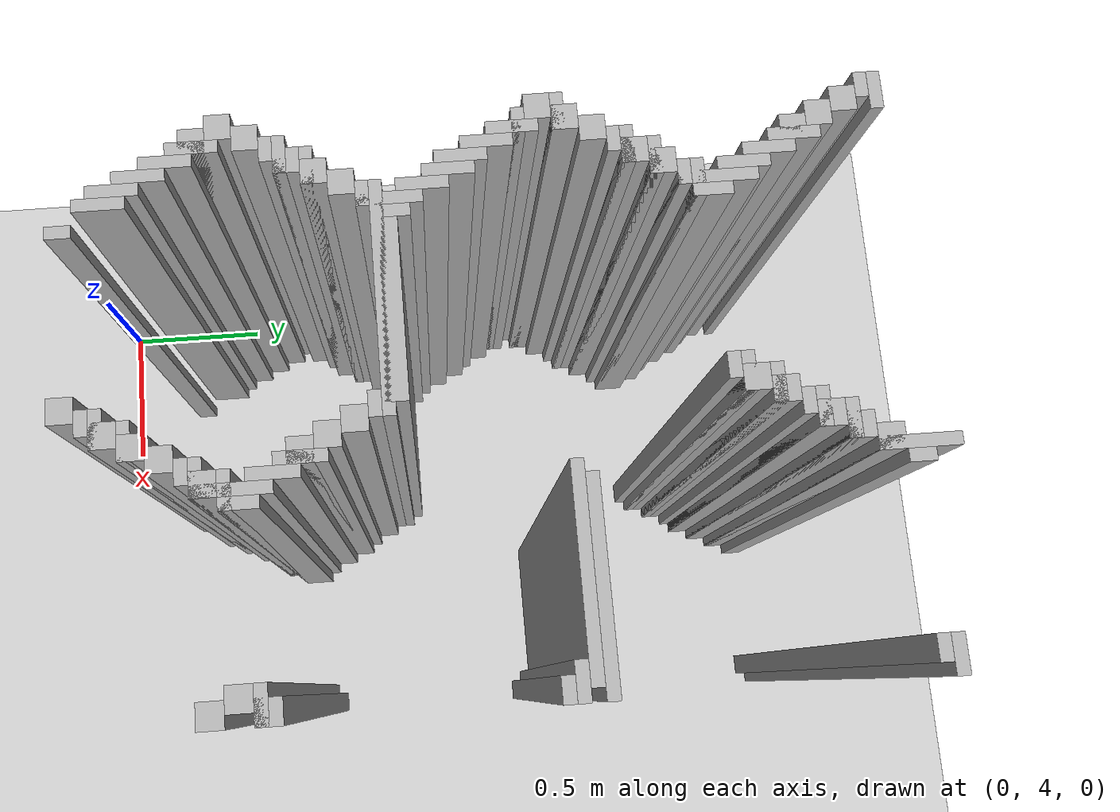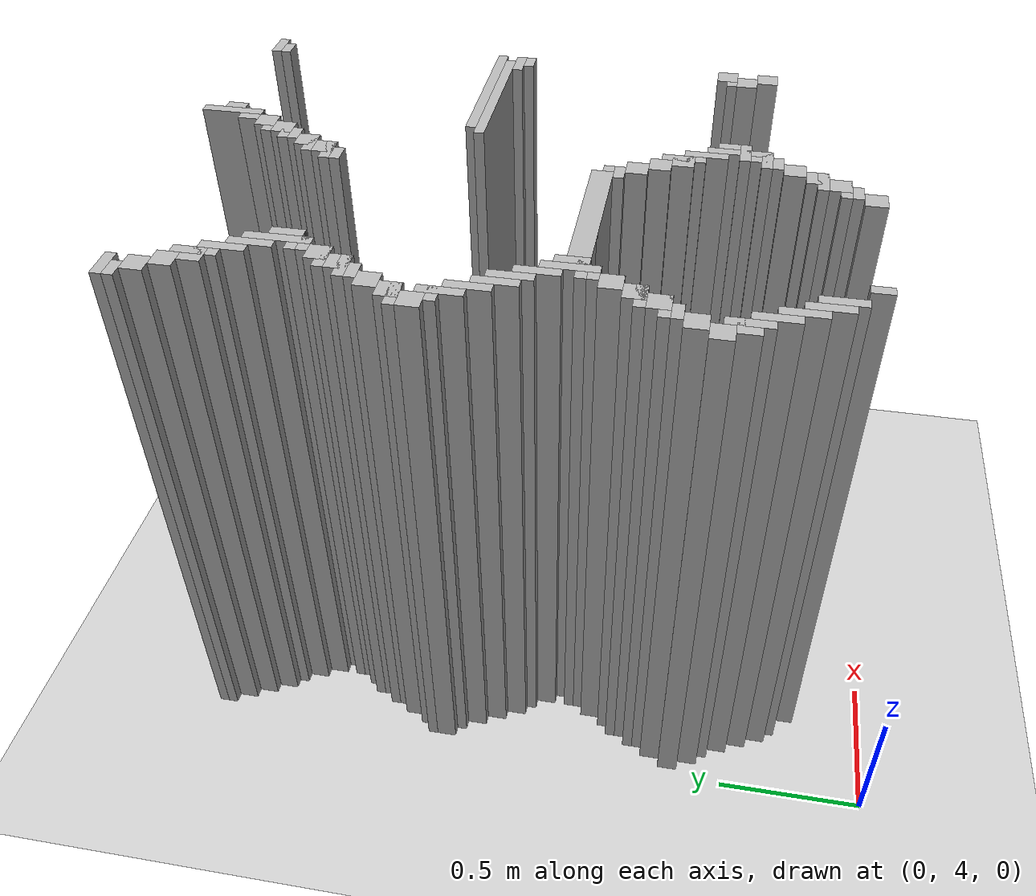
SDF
<sdf version="1.6">
 <world name="slam_world">
  <model name="ground_plane">
   <static>true</static>
   <link name="link">
    <collision name="collision">
     <geometry><plane><normal>0 0 1</normal><size>100 100</size></plane></geometry>
    </collision>
    <visual name="visual">
     <geometry><plane><normal>0 0 1</normal><size>100 100</size></plane></geometry>
     <material>
      <ambient>0.8 0.8 0.8 1</ambient>
      <diffuse>0.8 0.8 0.8 1</diffuse>
      <specular>0.8 0.8 0.8 1</specular>
     </material>
    </visual>
   </link>
  </model>
  <model name="wall_3567">
   <static>true</static>
   <pose>1.0266821345707655 6.403712296983758 1.0 0 0 0</pose>
   <link name="link">
    <collision name="collision">
     <geometry><box><size>0.03480278422273782 0.2088167053364269 2.0</size></box></geometry>
    </collision>
    <visual name="visual">
     <geometry><box><size>0.03480278422273782 0.2088167053364269 2.0</size></box></geometry>
     <material><ambient>0.5 0.5 0.5 1</ambient><diffuse>0.7 0.7 0.7 1</diffuse></material>
    </visual>
   </link>
  </model>
  <model name="wall_3596">
   <static>true</static>
   <pose>0.08700696055684454 6.421113689095128 1.0 0 0 0</pose>
   <link name="link">
    <collision name="collision">
     <geometry><box><size>0.10440835266821345 0.03480278422273782 2.0</size></box></geometry>
    </collision>
    <visual name="visual">
     <geometry><box><size>0.10440835266821345 0.03480278422273782 2.0</size></box></geometry>
     <material><ambient>0.5 0.5 0.5 1</ambient><diffuse>0.7 0.7 0.7 1</diffuse></material>
    </visual>
   </link>
  </model>
  <model name="wall_3597">
   <static>true</static>
   <pose>1.0614849187935034 6.403712296983758 1.0 0 0 0</pose>
   <link name="link">
    <collision name="collision">
     <geometry><box><size>0.03480278422273782 0.06960556844547564 2.0</size></box></geometry>
    </collision>
    <visual name="visual">
     <geometry><box><size>0.03480278422273782 0.06960556844547564 2.0</size></box></geometry>
     <material><ambient>0.5 0.5 0.5 1</ambient><diffuse>0.7 0.7 0.7 1</diffuse></material>
    </visual>
   </link>
  </model>
  <model name="wall_3598">
   <static>true</static>
   <pose>1.548723897911833 6.421113689095128 1.0 0 0 0</pose>
   <link name="link">
    <collision name="collision">
     <geometry><box><size>0.10440835266821345 0.03480278422273782 2.0</size></box></geometry>
    </collision>
    <visual name="visual">
     <geometry><box><size>0.10440835266821345 0.03480278422273782 2.0</size></box></geometry>
     <material><ambient>0.5 0.5 0.5 1</ambient><diffuse>0.7 0.7 0.7 1</diffuse></material>
    </visual>
   </link>
  </model>
  <model name="wall_3610">
   <static>true</static>
   <pose>0.06960556844547564 6.386310904872389 1.0 0 0 0</pose>
   <link name="link">
    <collision name="collision">
     <geometry><box><size>0.06960556844547564 0.03480278422273782 2.0</size></box></geometry>
    </collision>
    <visual name="visual">
     <geometry><box><size>0.06960556844547564 0.03480278422273782 2.0</size></box></geometry>
     <material><ambient>0.5 0.5 0.5 1</ambient><diffuse>0.7 0.7 0.7 1</diffuse></material>
    </visual>
   </link>
  </model>
  <model name="wall_3611">
   <static>true</static>
   <pose>1.531322505800464 6.386310904872389 1.0 0 0 0</pose>
   <link name="link">
    <collision name="collision">
     <geometry><box><size>0.06960556844547564 0.03480278422273782 2.0</size></box></geometry>
    </collision>
    <visual name="visual">
     <geometry><box><size>0.06960556844547564 0.03480278422273782 2.0</size></box></geometry>
     <material><ambient>0.5 0.5 0.5 1</ambient><diffuse>0.7 0.7 0.7 1</diffuse></material>
    </visual>
   </link>
  </model>
  <model name="wall_3620">
   <static>true</static>
   <pose>0.10440835266821345 6.334106728538282 1.0 0 0 0</pose>
   <link name="link">
    <collision name="collision">
     <geometry><box><size>0.06960556844547564 0.06960556844547564 2.0</size></box></geometry>
    </collision>
    <visual name="visual">
     <geometry><box><size>0.06960556844547564 0.06960556844547564 2.0</size></box></geometry>
     <material><ambient>0.5 0.5 0.5 1</ambient><diffuse>0.7 0.7 0.7 1</diffuse></material>
    </visual>
   </link>
  </model>
  <model name="wall_3621">
   <static>true</static>
   <pose>1.0092807424593968 6.334106728538282 1.0 0 0 0</pose>
   <link name="link">
    <collision name="collision">
     <geometry><box><size>0.06960556844547564 0.06960556844547564 2.0</size></box></geometry>
    </collision>
    <visual name="visual">
     <geometry><box><size>0.06960556844547564 0.06960556844547564 2.0</size></box></geometry>
     <material><ambient>0.5 0.5 0.5 1</ambient><diffuse>0.7 0.7 0.7 1</diffuse></material>
    </visual>
   </link>
  </model>
  <model name="wall_3642">
   <static>true</static>
   <pose>0.13921113689095127 6.2645011600928076 1.0 0 0 0</pose>
   <link name="link">
    <collision name="collision">
     <geometry><box><size>0.06960556844547564 0.06960556844547564 2.0</size></box></geometry>
    </collision>
    <visual name="visual">
     <geometry><box><size>0.06960556844547564 0.06960556844547564 2.0</size></box></geometry>
     <material><ambient>0.5 0.5 0.5 1</ambient><diffuse>0.7 0.7 0.7 1</diffuse></material>
    </visual>
   </link>
  </model>
  <model name="wall_3643">
   <static>true</static>
   <pose>0.974477958236659 6.2645011600928076 1.0 0 0 0</pose>
   <link name="link">
    <collision name="collision">
     <geometry><box><size>0.06960556844547564 0.06960556844547564 2.0</size></box></geometry>
    </collision>
    <visual name="visual">
     <geometry><box><size>0.06960556844547564 0.06960556844547564 2.0</size></box></geometry>
     <material><ambient>0.5 0.5 0.5 1</ambient><diffuse>0.7 0.7 0.7 1</diffuse></material>
    </visual>
   </link>
  </model>
  <model name="wall_3655">
   <static>true</static>
   <pose>0.191415313225058 6.194895591647332 1.0 0 0 0</pose>
   <link name="link">
    <collision name="collision">
     <geometry><box><size>0.03480278422273782 0.13921113689095127 2.0</size></box></geometry>
    </collision>
    <visual name="visual">
     <geometry><box><size>0.03480278422273782 0.13921113689095127 2.0</size></box></geometry>
     <material><ambient>0.5 0.5 0.5 1</ambient><diffuse>0.7 0.7 0.7 1</diffuse></material>
    </visual>
   </link>
  </model>
  <model name="wall_3656">
   <static>true</static>
   <pose>0.95707656612529 6.247099767981438 1.0 0 0 0</pose>
   <link name="link">
    <collision name="collision">
     <geometry><box><size>0.10440835266821345 0.03480278422273782 2.0</size></box></geometry>
    </collision>
    <visual name="visual">
     <geometry><box><size>0.10440835266821345 0.03480278422273782 2.0</size></box></geometry>
     <material><ambient>0.5 0.5 0.5 1</ambient><diffuse>0.7 0.7 0.7 1</diffuse></material>
    </visual>
   </link>
  </model>
  <model name="wall_3668">
   <static>true</static>
   <pose>0.17401392111368907 6.194895591647332 1.0 0 0 0</pose>
   <link name="link">
    <collision name="collision">
     <geometry><box><size>0.06960556844547564 0.06960556844547564 2.0</size></box></geometry>
    </collision>
    <visual name="visual">
     <geometry><box><size>0.06960556844547564 0.06960556844547564 2.0</size></box></geometry>
     <material><ambient>0.5 0.5 0.5 1</ambient><diffuse>0.7 0.7 0.7 1</diffuse></material>
    </visual>
   </link>
  </model>
  <model name="wall_3669">
   <static>true</static>
   <pose>0.9396751740139211 6.194895591647332 1.0 0 0 0</pose>
   <link name="link">
    <collision name="collision">
     <geometry><box><size>0.06960556844547564 0.06960556844547564 2.0</size></box></geometry>
    </collision>
    <visual name="visual">
     <geometry><box><size>0.06960556844547564 0.06960556844547564 2.0</size></box></geometry>
     <material><ambient>0.5 0.5 0.5 1</ambient><diffuse>0.7 0.7 0.7 1</diffuse></material>
    </visual>
   </link>
  </model>
  <model name="wall_3681">
   <static>true</static>
   <pose>0.2262180974477958 6.125290023201856 1.0 0 0 0</pose>
   <link name="link">
    <collision name="collision">
     <geometry><box><size>0.03480278422273782 0.13921113689095127 2.0</size></box></geometry>
    </collision>
    <visual name="visual">
     <geometry><box><size>0.03480278422273782 0.13921113689095127 2.0</size></box></geometry>
     <material><ambient>0.5 0.5 0.5 1</ambient><diffuse>0.7 0.7 0.7 1</diffuse></material>
    </visual>
   </link>
  </model>
  <model name="wall_3682">
   <static>true</static>
   <pose>0.9222737819025522 6.177494199535962 1.0 0 0 0</pose>
   <link name="link">
    <collision name="collision">
     <geometry><box><size>0.10440835266821345 0.03480278422273782 2.0</size></box></geometry>
    </collision>
    <visual name="visual">
     <geometry><box><size>0.10440835266821345 0.03480278422273782 2.0</size></box></geometry>
     <material><ambient>0.5 0.5 0.5 1</ambient><diffuse>0.7 0.7 0.7 1</diffuse></material>
    </visual>
   </link>
  </model>
  <model name="wall_3694">
   <static>true</static>
   <pose>0.9048723897911832 6.142691415313225 1.0 0 0 0</pose>
   <link name="link">
    <collision name="collision">
     <geometry><box><size>0.06960556844547564 0.03480278422273782 2.0</size></box></geometry>
    </collision>
    <visual name="visual">
     <geometry><box><size>0.06960556844547564 0.03480278422273782 2.0</size></box></geometry>
     <material><ambient>0.5 0.5 0.5 1</ambient><diffuse>0.7 0.7 0.7 1</diffuse></material>
    </visual>
   </link>
  </model>
  <model name="wall_3699">
   <static>true</static>
   <pose>0.2610208816705336 6.05568445475638 1.0 0 0 0</pose>
   <link name="link">
    <collision name="collision">
     <geometry><box><size>0.03480278422273782 0.13921113689095127 2.0</size></box></geometry>
    </collision>
    <visual name="visual">
     <geometry><box><size>0.03480278422273782 0.13921113689095127 2.0</size></box></geometry>
     <material><ambient>0.5 0.5 0.5 1</ambient><diffuse>0.7 0.7 0.7 1</diffuse></material>
    </visual>
   </link>
  </model>
  <model name="wall_3700">
   <static>true</static>
   <pose>0.8700696055684455 6.090487238979118 1.0 0 0 0</pose>
   <link name="link">
    <collision name="collision">
     <geometry><box><size>0.06960556844547564 0.06960556844547564 2.0</size></box></geometry>
    </collision>
    <visual name="visual">
     <geometry><box><size>0.06960556844547564 0.06960556844547564 2.0</size></box></geometry>
     <material><ambient>0.5 0.5 0.5 1</ambient><diffuse>0.7 0.7 0.7 1</diffuse></material>
    </visual>
   </link>
  </model>
  <model name="wall_3712">
   <static>true</static>
   <pose>0.29582366589327147 5.986078886310905 1.0 0 0 0</pose>
   <link name="link">
    <collision name="collision">
     <geometry><box><size>0.03480278422273782 0.2088167053364269 2.0</size></box></geometry>
    </collision>
    <visual name="visual">
     <geometry><box><size>0.03480278422273782 0.2088167053364269 2.0</size></box></geometry>
     <material><ambient>0.5 0.5 0.5 1</ambient><diffuse>0.7 0.7 0.7 1</diffuse></material>
    </visual>
   </link>
  </model>
  <model name="wall_3713">
   <static>true</static>
   <pose>0.8526682134570766 6.073085846867749 1.0 0 0 0</pose>
   <link name="link">
    <collision name="collision">
     <geometry><box><size>0.10440835266821345 0.03480278422273782 2.0</size></box></geometry>
    </collision>
    <visual name="visual">
     <geometry><box><size>0.10440835266821345 0.03480278422273782 2.0</size></box></geometry>
     <material><ambient>0.5 0.5 0.5 1</ambient><diffuse>0.7 0.7 0.7 1</diffuse></material>
    </visual>
   </link>
  </model>
  <model name="wall_3725">
   <static>true</static>
   <pose>0.8352668213457076 6.020881670533642 1.0 0 0 0</pose>
   <link name="link">
    <collision name="collision">
     <geometry><box><size>0.06960556844547564 0.06960556844547564 2.0</size></box></geometry>
    </collision>
    <visual name="visual">
     <geometry><box><size>0.06960556844547564 0.06960556844547564 2.0</size></box></geometry>
     <material><ambient>0.5 0.5 0.5 1</ambient><diffuse>0.7 0.7 0.7 1</diffuse></material>
    </visual>
   </link>
  </model>
  <model name="wall_3730">
   <static>true</static>
   <pose>0.3306264501160093 5.968677494199536 1.0 0 0 0</pose>
   <link name="link">
    <collision name="collision">
     <geometry><box><size>0.03480278422273782 0.10440835266821345 2.0</size></box></geometry>
    </collision>
    <visual name="visual">
     <geometry><box><size>0.03480278422273782 0.10440835266821345 2.0</size></box></geometry>
     <material><ambient>0.5 0.5 0.5 1</ambient><diffuse>0.7 0.7 0.7 1</diffuse></material>
    </visual>
   </link>
  </model>
  <model name="wall_3731">
   <static>true</static>
   <pose>0.8178654292343387 6.003480278422273 1.0 0 0 0</pose>
   <link name="link">
    <collision name="collision">
     <geometry><box><size>0.10440835266821345 0.03480278422273782 2.0</size></box></geometry>
    </collision>
    <visual name="visual">
     <geometry><box><size>0.10440835266821345 0.03480278422273782 2.0</size></box></geometry>
     <material><ambient>0.5 0.5 0.5 1</ambient><diffuse>0.7 0.7 0.7 1</diffuse></material>
    </visual>
   </link>
  </model>
  <model name="wall_3742">
   <static>true</static>
   <pose>0.8004640371229698 5.968677494199536 1.0 0 0 0</pose>
   <link name="link">
    <collision name="collision">
     <geometry><box><size>0.06960556844547564 0.03480278422273782 2.0</size></box></geometry>
    </collision>
    <visual name="visual">
     <geometry><box><size>0.06960556844547564 0.03480278422273782 2.0</size></box></geometry>
     <material><ambient>0.5 0.5 0.5 1</ambient><diffuse>0.7 0.7 0.7 1</diffuse></material>
    </visual>
   </link>
  </model>
  <model name="wall_3752">
   <static>true</static>
   <pose>0.29582366589327147 5.933874709976798 1.0 0 0 0</pose>
   <link name="link">
    <collision name="collision">
     <geometry><box><size>0.10440835266821345 0.03480278422273782 2.0</size></box></geometry>
    </collision>
    <visual name="visual">
     <geometry><box><size>0.10440835266821345 0.03480278422273782 2.0</size></box></geometry>
     <material><ambient>0.5 0.5 0.5 1</ambient><diffuse>0.7 0.7 0.7 1</diffuse></material>
    </visual>
   </link>
  </model>
  <model name="wall_3765">
   <static>true</static>
   <pose>0.27842227378190254 5.89907192575406 1.0 0 0 0</pose>
   <link name="link">
    <collision name="collision">
     <geometry><box><size>0.06960556844547564 0.03480278422273782 2.0</size></box></geometry>
    </collision>
    <visual name="visual">
     <geometry><box><size>0.06960556844547564 0.03480278422273782 2.0</size></box></geometry>
     <material><ambient>0.5 0.5 0.5 1</ambient><diffuse>0.7 0.7 0.7 1</diffuse></material>
    </visual>
   </link>
  </model>
  <model name="wall_3771">
   <static>true</static>
   <pose>0.24361948955916474 5.846867749419953 1.0 0 0 0</pose>
   <link name="link">
    <collision name="collision">
     <geometry><box><size>0.06960556844547564 0.06960556844547564 2.0</size></box></geometry>
    </collision>
    <visual name="visual">
     <geometry><box><size>0.06960556844547564 0.06960556844547564 2.0</size></box></geometry>
     <material><ambient>0.5 0.5 0.5 1</ambient><diffuse>0.7 0.7 0.7 1</diffuse></material>
    </visual>
   </link>
  </model>
  <model name="wall_3784">
   <static>true</static>
   <pose>0.2262180974477958 5.8294663573085845 1.0 0 0 0</pose>
   <link name="link">
    <collision name="collision">
     <geometry><box><size>0.10440835266821345 0.03480278422273782 2.0</size></box></geometry>
    </collision>
    <visual name="visual">
     <geometry><box><size>0.10440835266821345 0.03480278422273782 2.0</size></box></geometry>
     <material><ambient>0.5 0.5 0.5 1</ambient><diffuse>0.7 0.7 0.7 1</diffuse></material>
    </visual>
   </link>
  </model>
  <model name="wall_3797">
   <static>true</static>
   <pose>0.2088167053364269 5.7772621809744775 1.0 0 0 0</pose>
   <link name="link">
    <collision name="collision">
     <geometry><box><size>0.06960556844547564 0.06960556844547564 2.0</size></box></geometry>
    </collision>
    <visual name="visual">
     <geometry><box><size>0.06960556844547564 0.06960556844547564 2.0</size></box></geometry>
     <material><ambient>0.5 0.5 0.5 1</ambient><diffuse>0.7 0.7 0.7 1</diffuse></material>
    </visual>
   </link>
  </model>
  <model name="wall_3809">
   <static>true</static>
   <pose>0.191415313225058 5.759860788863109 1.0 0 0 0</pose>
   <link name="link">
    <collision name="collision">
     <geometry><box><size>0.10440835266821345 0.03480278422273782 2.0</size></box></geometry>
    </collision>
    <visual name="visual">
     <geometry><box><size>0.10440835266821345 0.03480278422273782 2.0</size></box></geometry>
     <material><ambient>0.5 0.5 0.5 1</ambient><diffuse>0.7 0.7 0.7 1</diffuse></material>
    </visual>
   </link>
  </model>
  <model name="wall_3822">
   <static>true</static>
   <pose>0.17401392111368907 5.725058004640371 1.0 0 0 0</pose>
   <link name="link">
    <collision name="collision">
     <geometry><box><size>0.06960556844547564 0.03480278422273782 2.0</size></box></geometry>
    </collision>
    <visual name="visual">
     <geometry><box><size>0.06960556844547564 0.03480278422273782 2.0</size></box></geometry>
     <material><ambient>0.5 0.5 0.5 1</ambient><diffuse>0.7 0.7 0.7 1</diffuse></material>
    </visual>
   </link>
  </model>
  <model name="wall_3828">
   <static>true</static>
   <pose>0.13921113689095127 5.672853828306264 1.0 0 0 0</pose>
   <link name="link">
    <collision name="collision">
     <geometry><box><size>0.06960556844547564 0.06960556844547564 2.0</size></box></geometry>
    </collision>
    <visual name="visual">
     <geometry><box><size>0.06960556844547564 0.06960556844547564 2.0</size></box></geometry>
     <material><ambient>0.5 0.5 0.5 1</ambient><diffuse>0.7 0.7 0.7 1</diffuse></material>
    </visual>
   </link>
  </model>
  <model name="wall_3841">
   <static>true</static>
   <pose>0.10440835266821345 5.603248259860789 1.0 0 0 0</pose>
   <link name="link">
    <collision name="collision">
     <geometry><box><size>0.06960556844547564 0.06960556844547564 2.0</size></box></geometry>
    </collision>
    <visual name="visual">
     <geometry><box><size>0.06960556844547564 0.06960556844547564 2.0</size></box></geometry>
     <material><ambient>0.5 0.5 0.5 1</ambient><diffuse>0.7 0.7 0.7 1</diffuse></material>
    </visual>
   </link>
  </model>
  <model name="wall_3854">
   <static>true</static>
   <pose>0.08700696055684454 5.58584686774942 1.0 0 0 0</pose>
   <link name="link">
    <collision name="collision">
     <geometry><box><size>0.10440835266821345 0.03480278422273782 2.0</size></box></geometry>
    </collision>
    <visual name="visual">
     <geometry><box><size>0.10440835266821345 0.03480278422273782 2.0</size></box></geometry>
     <material><ambient>0.5 0.5 0.5 1</ambient><diffuse>0.7 0.7 0.7 1</diffuse></material>
    </visual>
   </link>
  </model>
  <model name="wall_3855">
   <static>true</static>
   <pose>1.322505800464037 5.58584686774942 1.0 0 0 0</pose>
   <link name="link">
    <collision name="collision">
     <geometry><box><size>0.5568445475638051 0.03480278422273782 2.0</size></box></geometry>
    </collision>
    <visual name="visual">
     <geometry><box><size>0.5568445475638051 0.03480278422273782 2.0</size></box></geometry>
     <material><ambient>0.5 0.5 0.5 1</ambient><diffuse>0.7 0.7 0.7 1</diffuse></material>
    </visual>
   </link>
  </model>
  <model name="wall_3868">
   <static>true</static>
   <pose>0.06960556844547564 5.533642691415313 1.0 0 0 0</pose>
   <link name="link">
    <collision name="collision">
     <geometry><box><size>0.06960556844547564 0.06960556844547564 2.0</size></box></geometry>
    </collision>
    <visual name="visual">
     <geometry><box><size>0.06960556844547564 0.06960556844547564 2.0</size></box></geometry>
     <material><ambient>0.5 0.5 0.5 1</ambient><diffuse>0.7 0.7 0.7 1</diffuse></material>
    </visual>
   </link>
  </model>
  <model name="wall_3869">
   <static>true</static>
   <pose>1.2877030162412992 5.551044083526682 1.0 0 0 0</pose>
   <link name="link">
    <collision name="collision">
     <geometry><box><size>0.5568445475638051 0.03480278422273782 2.0</size></box></geometry>
    </collision>
    <visual name="visual">
     <geometry><box><size>0.5568445475638051 0.03480278422273782 2.0</size></box></geometry>
     <material><ambient>0.5 0.5 0.5 1</ambient><diffuse>0.7 0.7 0.7 1</diffuse></material>
    </visual>
   </link>
  </model>
  <model name="wall_3879">
   <static>true</static>
   <pose>0.12180974477958237 5.464037122969837 1.0 0 0 0</pose>
   <link name="link">
    <collision name="collision">
     <geometry><box><size>0.03480278422273782 0.13921113689095127 2.0</size></box></geometry>
    </collision>
    <visual name="visual">
     <geometry><box><size>0.03480278422273782 0.13921113689095127 2.0</size></box></geometry>
     <material><ambient>0.5 0.5 0.5 1</ambient><diffuse>0.7 0.7 0.7 1</diffuse></material>
    </visual>
   </link>
  </model>
  <model name="wall_3880">
   <static>true</static>
   <pose>1.548723897911833 5.516241299303944 1.0 0 0 0</pose>
   <link name="link">
    <collision name="collision">
     <geometry><box><size>0.10440835266821345 0.03480278422273782 2.0</size></box></geometry>
    </collision>
    <visual name="visual">
     <geometry><box><size>0.10440835266821345 0.03480278422273782 2.0</size></box></geometry>
     <material><ambient>0.5 0.5 0.5 1</ambient><diffuse>0.7 0.7 0.7 1</diffuse></material>
    </visual>
   </link>
  </model>
  <model name="wall_3894">
   <static>true</static>
   <pose>0.10440835266821345 5.481438515081206 1.0 0 0 0</pose>
   <link name="link">
    <collision name="collision">
     <geometry><box><size>0.06960556844547564 0.03480278422273782 2.0</size></box></geometry>
    </collision>
    <visual name="visual">
     <geometry><box><size>0.06960556844547564 0.03480278422273782 2.0</size></box></geometry>
     <material><ambient>0.5 0.5 0.5 1</ambient><diffuse>0.7 0.7 0.7 1</diffuse></material>
    </visual>
   </link>
  </model>
  <model name="wall_3895">
   <static>true</static>
   <pose>1.5661252900232019 5.481438515081206 1.0 0 0 0</pose>
   <link name="link">
    <collision name="collision">
     <geometry><box><size>0.06960556844547564 0.03480278422273782 2.0</size></box></geometry>
    </collision>
    <visual name="visual">
     <geometry><box><size>0.06960556844547564 0.03480278422273782 2.0</size></box></geometry>
     <material><ambient>0.5 0.5 0.5 1</ambient><diffuse>0.7 0.7 0.7 1</diffuse></material>
    </visual>
   </link>
  </model>
  <model name="wall_3907">
   <static>true</static>
   <pose>0.15661252900232017 5.3944315545243615 1.0 0 0 0</pose>
   <link name="link">
    <collision name="collision">
     <geometry><box><size>0.03480278422273782 0.13921113689095127 2.0</size></box></geometry>
    </collision>
    <visual name="visual">
     <geometry><box><size>0.03480278422273782 0.13921113689095127 2.0</size></box></geometry>
     <material><ambient>0.5 0.5 0.5 1</ambient><diffuse>0.7 0.7 0.7 1</diffuse></material>
    </visual>
   </link>
  </model>
  <model name="wall_3920">
   <static>true</static>
   <pose>0.191415313225058 5.324825986078886 1.0 0 0 0</pose>
   <link name="link">
    <collision name="collision">
     <geometry><box><size>0.03480278422273782 0.13921113689095127 2.0</size></box></geometry>
    </collision>
    <visual name="visual">
     <geometry><box><size>0.03480278422273782 0.13921113689095127 2.0</size></box></geometry>
     <material><ambient>0.5 0.5 0.5 1</ambient><diffuse>0.7 0.7 0.7 1</diffuse></material>
    </visual>
   </link>
  </model>
  <model name="wall_3933">
   <static>true</static>
   <pose>0.2262180974477958 5.290023201856148 1.0 0 0 0</pose>
   <link name="link">
    <collision name="collision">
     <geometry><box><size>0.03480278422273782 0.13921113689095127 2.0</size></box></geometry>
    </collision>
    <visual name="visual">
     <geometry><box><size>0.03480278422273782 0.13921113689095127 2.0</size></box></geometry>
     <material><ambient>0.5 0.5 0.5 1</ambient><diffuse>0.7 0.7 0.7 1</diffuse></material>
    </visual>
   </link>
  </model>
  <model name="wall_3954">
   <static>true</static>
   <pose>0.2610208816705336 5.220417633410673 1.0 0 0 0</pose>
   <link name="link">
    <collision name="collision">
     <geometry><box><size>0.03480278422273782 0.13921113689095127 2.0</size></box></geometry>
    </collision>
    <visual name="visual">
     <geometry><box><size>0.03480278422273782 0.13921113689095127 2.0</size></box></geometry>
     <material><ambient>0.5 0.5 0.5 1</ambient><diffuse>0.7 0.7 0.7 1</diffuse></material>
    </visual>
   </link>
  </model>
  <model name="wall_3974">
   <static>true</static>
   <pose>0.29582366589327147 5.133410672853828 1.0 0 0 0</pose>
   <link name="link">
    <collision name="collision">
     <geometry><box><size>0.03480278422273782 0.17401392111368907 2.0</size></box></geometry>
    </collision>
    <visual name="visual">
     <geometry><box><size>0.03480278422273782 0.17401392111368907 2.0</size></box></geometry>
     <material><ambient>0.5 0.5 0.5 1</ambient><diffuse>0.7 0.7 0.7 1</diffuse></material>
    </visual>
   </link>
  </model>
  <model name="wall_3987">
   <static>true</static>
   <pose>0.3306264501160093 5.133410672853828 1.0 0 0 0</pose>
   <link name="link">
    <collision name="collision">
     <geometry><box><size>0.03480278422273782 0.10440835266821345 2.0</size></box></geometry>
    </collision>
    <visual name="visual">
     <geometry><box><size>0.03480278422273782 0.10440835266821345 2.0</size></box></geometry>
     <material><ambient>0.5 0.5 0.5 1</ambient><diffuse>0.7 0.7 0.7 1</diffuse></material>
    </visual>
   </link>
  </model>
  <model name="wall_4000">
   <static>true</static>
   <pose>0.5916473317865429 5.1160092807424595 1.0 0 0 0</pose>
   <link name="link">
    <collision name="collision">
     <geometry><box><size>0.4872389791183295 0.06960556844547564 2.0</size></box></geometry>
    </collision>
    <visual name="visual">
     <geometry><box><size>0.4872389791183295 0.06960556844547564 2.0</size></box></geometry>
     <material><ambient>0.5 0.5 0.5 1</ambient><diffuse>0.7 0.7 0.7 1</diffuse></material>
    </visual>
   </link>
  </model>
  <model name="wall_4010">
   <static>true</static>
   <pose>0.5568445475638051 5.09860788863109 1.0 0 0 0</pose>
   <link name="link">
    <collision name="collision">
     <geometry><box><size>0.6264501160092807 0.03480278422273782 2.0</size></box></geometry>
    </collision>
    <visual name="visual">
     <geometry><box><size>0.6264501160092807 0.03480278422273782 2.0</size></box></geometry>
     <material><ambient>0.5 0.5 0.5 1</ambient><diffuse>0.7 0.7 0.7 1</diffuse></material>
    </visual>
   </link>
  </model>
  <model name="wall_4022">
   <static>true</static>
   <pose>0.27842227378190254 5.0638051044083525 1.0 0 0 0</pose>
   <link name="link">
    <collision name="collision">
     <geometry><box><size>0.06960556844547564 0.03480278422273782 2.0</size></box></geometry>
    </collision>
    <visual name="visual">
     <geometry><box><size>0.06960556844547564 0.03480278422273782 2.0</size></box></geometry>
     <material><ambient>0.5 0.5 0.5 1</ambient><diffuse>0.7 0.7 0.7 1</diffuse></material>
    </visual>
   </link>
  </model>
  <model name="wall_4023">
   <static>true</static>
   <pose>0.8352668213457076 5.0638051044083525 1.0 0 0 0</pose>
   <link name="link">
    <collision name="collision">
     <geometry><box><size>0.06960556844547564 0.03480278422273782 2.0</size></box></geometry>
    </collision>
    <visual name="visual">
     <geometry><box><size>0.06960556844547564 0.03480278422273782 2.0</size></box></geometry>
     <material><ambient>0.5 0.5 0.5 1</ambient><diffuse>0.7 0.7 0.7 1</diffuse></material>
    </visual>
   </link>
  </model>
  <model name="wall_4037">
   <static>true</static>
   <pose>0.24361948955916474 5.0116009280742455 1.0 0 0 0</pose>
   <link name="link">
    <collision name="collision">
     <geometry><box><size>0.06960556844547564 0.06960556844547564 2.0</size></box></geometry>
    </collision>
    <visual name="visual">
     <geometry><box><size>0.06960556844547564 0.06960556844547564 2.0</size></box></geometry>
     <material><ambient>0.5 0.5 0.5 1</ambient><diffuse>0.7 0.7 0.7 1</diffuse></material>
    </visual>
   </link>
  </model>
  <model name="wall_4038">
   <static>true</static>
   <pose>0.8700696055684455 5.0116009280742455 1.0 0 0 0</pose>
   <link name="link">
    <collision name="collision">
     <geometry><box><size>0.06960556844547564 0.06960556844547564 2.0</size></box></geometry>
    </collision>
    <visual name="visual">
     <geometry><box><size>0.06960556844547564 0.06960556844547564 2.0</size></box></geometry>
     <material><ambient>0.5 0.5 0.5 1</ambient><diffuse>0.7 0.7 0.7 1</diffuse></material>
    </visual>
   </link>
  </model>
  <model name="wall_4052">
   <static>true</static>
   <pose>0.2088167053364269 4.94199535962877 1.0 0 0 0</pose>
   <link name="link">
    <collision name="collision">
     <geometry><box><size>0.06960556844547564 0.06960556844547564 2.0</size></box></geometry>
    </collision>
    <visual name="visual">
     <geometry><box><size>0.06960556844547564 0.06960556844547564 2.0</size></box></geometry>
     <material><ambient>0.5 0.5 0.5 1</ambient><diffuse>0.7 0.7 0.7 1</diffuse></material>
    </visual>
   </link>
  </model>
  <model name="wall_4053">
   <static>true</static>
   <pose>0.9048723897911832 4.94199535962877 1.0 0 0 0</pose>
   <link name="link">
    <collision name="collision">
     <geometry><box><size>0.06960556844547564 0.06960556844547564 2.0</size></box></geometry>
    </collision>
    <visual name="visual">
     <geometry><box><size>0.06960556844547564 0.06960556844547564 2.0</size></box></geometry>
     <material><ambient>0.5 0.5 0.5 1</ambient><diffuse>0.7 0.7 0.7 1</diffuse></material>
    </visual>
   </link>
  </model>
  <model name="wall_4067">
   <static>true</static>
   <pose>0.191415313225058 4.924593967517401 1.0 0 0 0</pose>
   <link name="link">
    <collision name="collision">
     <geometry><box><size>0.10440835266821345 0.03480278422273782 2.0</size></box></geometry>
    </collision>
    <visual name="visual">
     <geometry><box><size>0.10440835266821345 0.03480278422273782 2.0</size></box></geometry>
     <material><ambient>0.5 0.5 0.5 1</ambient><diffuse>0.7 0.7 0.7 1</diffuse></material>
    </visual>
   </link>
  </model>
  <model name="wall_4068">
   <static>true</static>
   <pose>0.95707656612529 4.872389791183294 1.0 0 0 0</pose>
   <link name="link">
    <collision name="collision">
     <geometry><box><size>0.03480278422273782 0.13921113689095127 2.0</size></box></geometry>
    </collision>
    <visual name="visual">
     <geometry><box><size>0.03480278422273782 0.13921113689095127 2.0</size></box></geometry>
     <material><ambient>0.5 0.5 0.5 1</ambient><diffuse>0.7 0.7 0.7 1</diffuse></material>
    </visual>
   </link>
  </model>
  <model name="wall_4082">
   <static>true</static>
   <pose>0.17401392111368907 4.872389791183294 1.0 0 0 0</pose>
   <link name="link">
    <collision name="collision">
     <geometry><box><size>0.06960556844547564 0.06960556844547564 2.0</size></box></geometry>
    </collision>
    <visual name="visual">
     <geometry><box><size>0.06960556844547564 0.06960556844547564 2.0</size></box></geometry>
     <material><ambient>0.5 0.5 0.5 1</ambient><diffuse>0.7 0.7 0.7 1</diffuse></material>
    </visual>
   </link>
  </model>
  <model name="wall_4083">
   <static>true</static>
   <pose>0.9396751740139211 4.872389791183294 1.0 0 0 0</pose>
   <link name="link">
    <collision name="collision">
     <geometry><box><size>0.06960556844547564 0.06960556844547564 2.0</size></box></geometry>
    </collision>
    <visual name="visual">
     <geometry><box><size>0.06960556844547564 0.06960556844547564 2.0</size></box></geometry>
     <material><ambient>0.5 0.5 0.5 1</ambient><diffuse>0.7 0.7 0.7 1</diffuse></material>
    </visual>
   </link>
  </model>
  <model name="wall_4095">
   <static>true</static>
   <pose>0.15661252900232017 4.854988399071925 1.0 0 0 0</pose>
   <link name="link">
    <collision name="collision">
     <geometry><box><size>0.10440835266821345 0.03480278422273782 2.0</size></box></geometry>
    </collision>
    <visual name="visual">
     <geometry><box><size>0.10440835266821345 0.03480278422273782 2.0</size></box></geometry>
     <material><ambient>0.5 0.5 0.5 1</ambient><diffuse>0.7 0.7 0.7 1</diffuse></material>
    </visual>
   </link>
  </model>
  <model name="wall_4096">
   <static>true</static>
   <pose>0.9918793503480278 4.802784222737819 1.0 0 0 0</pose>
   <link name="link">
    <collision name="collision">
     <geometry><box><size>0.03480278422273782 0.13921113689095127 2.0</size></box></geometry>
    </collision>
    <visual name="visual">
     <geometry><box><size>0.03480278422273782 0.13921113689095127 2.0</size></box></geometry>
     <material><ambient>0.5 0.5 0.5 1</ambient><diffuse>0.7 0.7 0.7 1</diffuse></material>
    </visual>
   </link>
  </model>
  <model name="wall_4110">
   <static>true</static>
   <pose>0.13921113689095127 4.820185614849188 1.0 0 0 0</pose>
   <link name="link">
    <collision name="collision">
     <geometry><box><size>0.06960556844547564 0.03480278422273782 2.0</size></box></geometry>
    </collision>
    <visual name="visual">
     <geometry><box><size>0.06960556844547564 0.03480278422273782 2.0</size></box></geometry>
     <material><ambient>0.5 0.5 0.5 1</ambient><diffuse>0.7 0.7 0.7 1</diffuse></material>
    </visual>
   </link>
  </model>
  <model name="wall_4118">
   <static>true</static>
   <pose>0.10440835266821345 4.767981438515081 1.0 0 0 0</pose>
   <link name="link">
    <collision name="collision">
     <geometry><box><size>0.06960556844547564 0.06960556844547564 2.0</size></box></geometry>
    </collision>
    <visual name="visual">
     <geometry><box><size>0.06960556844547564 0.06960556844547564 2.0</size></box></geometry>
     <material><ambient>0.5 0.5 0.5 1</ambient><diffuse>0.7 0.7 0.7 1</diffuse></material>
    </visual>
   </link>
  </model>
  <model name="wall_4119">
   <static>true</static>
   <pose>1.0266821345707655 4.698375870069605 1.0 0 0 0</pose>
   <link name="link">
    <collision name="collision">
     <geometry><box><size>0.03480278422273782 0.2088167053364269 2.0</size></box></geometry>
    </collision>
    <visual name="visual">
     <geometry><box><size>0.03480278422273782 0.2088167053364269 2.0</size></box></geometry>
     <material><ambient>0.5 0.5 0.5 1</ambient><diffuse>0.7 0.7 0.7 1</diffuse></material>
    </visual>
   </link>
  </model>
  <model name="wall_4120">
   <static>true</static>
   <pose>1.5661252900232019 4.767981438515081 1.0 0 0 0</pose>
   <link name="link">
    <collision name="collision">
     <geometry><box><size>0.06960556844547564 0.06960556844547564 2.0</size></box></geometry>
    </collision>
    <visual name="visual">
     <geometry><box><size>0.06960556844547564 0.06960556844547564 2.0</size></box></geometry>
     <material><ambient>0.5 0.5 0.5 1</ambient><diffuse>0.7 0.7 0.7 1</diffuse></material>
    </visual>
   </link>
  </model>
  <model name="wall_4133">
   <static>true</static>
   <pose>1.0614849187935034 4.715777262180974 1.0 0 0 0</pose>
   <link name="link">
    <collision name="collision">
     <geometry><box><size>0.03480278422273782 0.10440835266821345 2.0</size></box></geometry>
    </collision>
    <visual name="visual">
     <geometry><box><size>0.03480278422273782 0.10440835266821345 2.0</size></box></geometry>
     <material><ambient>0.5 0.5 0.5 1</ambient><diffuse>0.7 0.7 0.7 1</diffuse></material>
    </visual>
   </link>
  </model>
  <model name="wall_4134">
   <static>true</static>
   <pose>1.548723897911833 4.750580046403712 1.0 0 0 0</pose>
   <link name="link">
    <collision name="collision">
     <geometry><box><size>0.10440835266821345 0.03480278422273782 2.0</size></box></geometry>
    </collision>
    <visual name="visual">
     <geometry><box><size>0.10440835266821345 0.03480278422273782 2.0</size></box></geometry>
     <material><ambient>0.5 0.5 0.5 1</ambient><diffuse>0.7 0.7 0.7 1</diffuse></material>
    </visual>
   </link>
  </model>
  <model name="wall_4147">
   <static>true</static>
   <pose>0.06960556844547564 4.698375870069605 1.0 0 0 0</pose>
   <link name="link">
    <collision name="collision">
     <geometry><box><size>0.06960556844547564 0.06960556844547564 2.0</size></box></geometry>
    </collision>
    <visual name="visual">
     <geometry><box><size>0.06960556844547564 0.06960556844547564 2.0</size></box></geometry>
     <material><ambient>0.5 0.5 0.5 1</ambient><diffuse>0.7 0.7 0.7 1</diffuse></material>
    </visual>
   </link>
  </model>
  <model name="wall_4148">
   <static>true</static>
   <pose>1.531322505800464 4.698375870069605 1.0 0 0 0</pose>
   <link name="link">
    <collision name="collision">
     <geometry><box><size>0.06960556844547564 0.06960556844547564 2.0</size></box></geometry>
    </collision>
    <visual name="visual">
     <geometry><box><size>0.06960556844547564 0.06960556844547564 2.0</size></box></geometry>
     <material><ambient>0.5 0.5 0.5 1</ambient><diffuse>0.7 0.7 0.7 1</diffuse></material>
    </visual>
   </link>
  </model>
  <model name="wall_4159">
   <static>true</static>
   <pose>0.12180974477958237 4.6287703016241295 1.0 0 0 0</pose>
   <link name="link">
    <collision name="collision">
     <geometry><box><size>0.03480278422273782 0.13921113689095127 2.0</size></box></geometry>
    </collision>
    <visual name="visual">
     <geometry><box><size>0.03480278422273782 0.13921113689095127 2.0</size></box></geometry>
     <material><ambient>0.5 0.5 0.5 1</ambient><diffuse>0.7 0.7 0.7 1</diffuse></material>
    </visual>
   </link>
  </model>
  <model name="wall_4160">
   <static>true</static>
   <pose>1.0266821345707655 4.6809744779582365 1.0 0 0 0</pose>
   <link name="link">
    <collision name="collision">
     <geometry><box><size>0.10440835266821345 0.03480278422273782 2.0</size></box></geometry>
    </collision>
    <visual name="visual">
     <geometry><box><size>0.10440835266821345 0.03480278422273782 2.0</size></box></geometry>
     <material><ambient>0.5 0.5 0.5 1</ambient><diffuse>0.7 0.7 0.7 1</diffuse></material>
    </visual>
   </link>
  </model>
  <model name="wall_4173">
   <static>true</static>
   <pose>0.10440835266821345 4.6287703016241295 1.0 0 0 0</pose>
   <link name="link">
    <collision name="collision">
     <geometry><box><size>0.06960556844547564 0.06960556844547564 2.0</size></box></geometry>
    </collision>
    <visual name="visual">
     <geometry><box><size>0.06960556844547564 0.06960556844547564 2.0</size></box></geometry>
     <material><ambient>0.5 0.5 0.5 1</ambient><diffuse>0.7 0.7 0.7 1</diffuse></material>
    </visual>
   </link>
  </model>
  <model name="wall_4174">
   <static>true</static>
   <pose>1.0092807424593968 4.6287703016241295 1.0 0 0 0</pose>
   <link name="link">
    <collision name="collision">
     <geometry><box><size>0.06960556844547564 0.06960556844547564 2.0</size></box></geometry>
    </collision>
    <visual name="visual">
     <geometry><box><size>0.06960556844547564 0.06960556844547564 2.0</size></box></geometry>
     <material><ambient>0.5 0.5 0.5 1</ambient><diffuse>0.7 0.7 0.7 1</diffuse></material>
    </visual>
   </link>
  </model>
  <model name="wall_4175">
   <static>true</static>
   <pose>1.5661252900232019 4.6287703016241295 1.0 0 0 0</pose>
   <link name="link">
    <collision name="collision">
     <geometry><box><size>0.06960556844547564 0.06960556844547564 2.0</size></box></geometry>
    </collision>
    <visual name="visual">
     <geometry><box><size>0.06960556844547564 0.06960556844547564 2.0</size></box></geometry>
     <material><ambient>0.5 0.5 0.5 1</ambient><diffuse>0.7 0.7 0.7 1</diffuse></material>
    </visual>
   </link>
  </model>
  <model name="wall_4188">
   <static>true</static>
   <pose>0.15661252900232017 4.559164733178654 1.0 0 0 0</pose>
   <link name="link">
    <collision name="collision">
     <geometry><box><size>0.03480278422273782 0.13921113689095127 2.0</size></box></geometry>
    </collision>
    <visual name="visual">
     <geometry><box><size>0.03480278422273782 0.13921113689095127 2.0</size></box></geometry>
     <material><ambient>0.5 0.5 0.5 1</ambient><diffuse>0.7 0.7 0.7 1</diffuse></material>
    </visual>
   </link>
  </model>
  <model name="wall_4189">
   <static>true</static>
   <pose>0.9918793503480278 4.611368909512761 1.0 0 0 0</pose>
   <link name="link">
    <collision name="collision">
     <geometry><box><size>0.10440835266821345 0.03480278422273782 2.0</size></box></geometry>
    </collision>
    <visual name="visual">
     <geometry><box><size>0.10440835266821345 0.03480278422273782 2.0</size></box></geometry>
     <material><ambient>0.5 0.5 0.5 1</ambient><diffuse>0.7 0.7 0.7 1</diffuse></material>
    </visual>
   </link>
  </model>
  <model name="wall_4203">
   <static>true</static>
   <pose>0.974477958236659 4.576566125290023 1.0 0 0 0</pose>
   <link name="link">
    <collision name="collision">
     <geometry><box><size>0.06960556844547564 0.03480278422273782 2.0</size></box></geometry>
    </collision>
    <visual name="visual">
     <geometry><box><size>0.06960556844547564 0.03480278422273782 2.0</size></box></geometry>
     <material><ambient>0.5 0.5 0.5 1</ambient><diffuse>0.7 0.7 0.7 1</diffuse></material>
    </visual>
   </link>
  </model>
  <model name="wall_4210">
   <static>true</static>
   <pose>0.191415313225058 4.489559164733178 1.0 0 0 0</pose>
   <link name="link">
    <collision name="collision">
     <geometry><box><size>0.03480278422273782 0.13921113689095127 2.0</size></box></geometry>
    </collision>
    <visual name="visual">
     <geometry><box><size>0.03480278422273782 0.13921113689095127 2.0</size></box></geometry>
     <material><ambient>0.5 0.5 0.5 1</ambient><diffuse>0.7 0.7 0.7 1</diffuse></material>
    </visual>
   </link>
  </model>
  <model name="wall_4211">
   <static>true</static>
   <pose>0.9396751740139211 4.524361948955916 1.0 0 0 0</pose>
   <link name="link">
    <collision name="collision">
     <geometry><box><size>0.06960556844547564 0.06960556844547564 2.0</size></box></geometry>
    </collision>
    <visual name="visual">
     <geometry><box><size>0.06960556844547564 0.06960556844547564 2.0</size></box></geometry>
     <material><ambient>0.5 0.5 0.5 1</ambient><diffuse>0.7 0.7 0.7 1</diffuse></material>
    </visual>
   </link>
  </model>
  <model name="wall_4225">
   <static>true</static>
   <pose>0.2262180974477958 4.419953596287703 1.0 0 0 0</pose>
   <link name="link">
    <collision name="collision">
     <geometry><box><size>0.03480278422273782 0.13921113689095127 2.0</size></box></geometry>
    </collision>
    <visual name="visual">
     <geometry><box><size>0.03480278422273782 0.13921113689095127 2.0</size></box></geometry>
     <material><ambient>0.5 0.5 0.5 1</ambient><diffuse>0.7 0.7 0.7 1</diffuse></material>
    </visual>
   </link>
  </model>
  <model name="wall_4226">
   <static>true</static>
   <pose>0.9048723897911832 4.454756380510441 1.0 0 0 0</pose>
   <link name="link">
    <collision name="collision">
     <geometry><box><size>0.06960556844547564 0.06960556844547564 2.0</size></box></geometry>
    </collision>
    <visual name="visual">
     <geometry><box><size>0.06960556844547564 0.06960556844547564 2.0</size></box></geometry>
     <material><ambient>0.5 0.5 0.5 1</ambient><diffuse>0.7 0.7 0.7 1</diffuse></material>
    </visual>
   </link>
  </model>
  <model name="wall_4240">
   <static>true</static>
   <pose>0.2610208816705336 4.385150812064965 1.0 0 0 0</pose>
   <link name="link">
    <collision name="collision">
     <geometry><box><size>0.03480278422273782 0.13921113689095127 2.0</size></box></geometry>
    </collision>
    <visual name="visual">
     <geometry><box><size>0.03480278422273782 0.13921113689095127 2.0</size></box></geometry>
     <material><ambient>0.5 0.5 0.5 1</ambient><diffuse>0.7 0.7 0.7 1</diffuse></material>
    </visual>
   </link>
  </model>
  <model name="wall_4241">
   <static>true</static>
   <pose>0.8874709976798143 4.437354988399072 1.0 0 0 0</pose>
   <link name="link">
    <collision name="collision">
     <geometry><box><size>0.10440835266821345 0.03480278422273782 2.0</size></box></geometry>
    </collision>
    <visual name="visual">
     <geometry><box><size>0.10440835266821345 0.03480278422273782 2.0</size></box></geometry>
     <material><ambient>0.5 0.5 0.5 1</ambient><diffuse>0.7 0.7 0.7 1</diffuse></material>
    </visual>
   </link>
  </model>
  <model name="wall_4255">
   <static>true</static>
   <pose>0.8700696055684455 4.385150812064965 1.0 0 0 0</pose>
   <link name="link">
    <collision name="collision">
     <geometry><box><size>0.06960556844547564 0.06960556844547564 2.0</size></box></geometry>
    </collision>
    <visual name="visual">
     <geometry><box><size>0.06960556844547564 0.06960556844547564 2.0</size></box></geometry>
     <material><ambient>0.5 0.5 0.5 1</ambient><diffuse>0.7 0.7 0.7 1</diffuse></material>
    </visual>
   </link>
  </model>
  <model name="wall_4262">
   <static>true</static>
   <pose>0.8526682134570766 4.367749419953596 1.0 0 0 0</pose>
   <link name="link">
    <collision name="collision">
     <geometry><box><size>0.10440835266821345 0.03480278422273782 2.0</size></box></geometry>
    </collision>
    <visual name="visual">
     <geometry><box><size>0.10440835266821345 0.03480278422273782 2.0</size></box></geometry>
     <material><ambient>0.5 0.5 0.5 1</ambient><diffuse>0.7 0.7 0.7 1</diffuse></material>
    </visual>
   </link>
  </model>
  <model name="wall_4276">
   <static>true</static>
   <pose>0.8352668213457076 4.332946635730858 1.0 0 0 0</pose>
   <link name="link">
    <collision name="collision">
     <geometry><box><size>0.06960556844547564 0.03480278422273782 2.0</size></box></geometry>
    </collision>
    <visual name="visual">
     <geometry><box><size>0.06960556844547564 0.03480278422273782 2.0</size></box></geometry>
     <material><ambient>0.5 0.5 0.5 1</ambient><diffuse>0.7 0.7 0.7 1</diffuse></material>
    </visual>
   </link>
  </model>
  <model name="wall_4282">
   <static>true</static>
   <pose>0.3306264501160093 4.280742459396752 1.0 0 0 0</pose>
   <link name="link">
    <collision name="collision">
     <geometry><box><size>0.03480278422273782 0.06960556844547564 2.0</size></box></geometry>
    </collision>
    <visual name="visual">
     <geometry><box><size>0.03480278422273782 0.06960556844547564 2.0</size></box></geometry>
     <material><ambient>0.5 0.5 0.5 1</ambient><diffuse>0.7 0.7 0.7 1</diffuse></material>
    </visual>
   </link>
  </model>
  <model name="wall_4283">
   <static>true</static>
   <pose>0.8004640371229698 4.280742459396752 1.0 0 0 0</pose>
   <link name="link">
    <collision name="collision">
     <geometry><box><size>0.06960556844547564 0.06960556844547564 2.0</size></box></geometry>
    </collision>
    <visual name="visual">
     <geometry><box><size>0.06960556844547564 0.06960556844547564 2.0</size></box></geometry>
     <material><ambient>0.5 0.5 0.5 1</ambient><diffuse>0.7 0.7 0.7 1</diffuse></material>
    </visual>
   </link>
  </model>
 </world>
</sdf>
